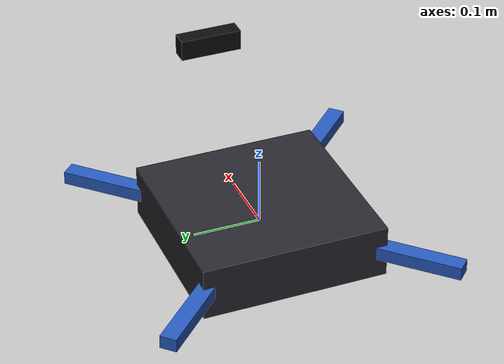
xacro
<?xml version="1.0"?>
<robot xmlns:xacro="http://www.ros.org/wiki/xacro" name="x500_depth_ros_visual">
  <!-- RViz/TF-only representation. It is intentionally NOT spawned in Gazebo. -->

  <material name="dark"><color rgba="0.15 0.15 0.18 1"/></material>
  <material name="accent"><color rgba="0.15 0.35 0.75 1"/></material>
  <material name="camera"><color rgba="0.05 0.05 0.05 1"/></material>

  <link name="base_link">
    <visual>
      <geometry><box size="0.28 0.28 0.08"/></geometry>
      <material name="dark"/>
    </visual>
  </link>

  <xacro:macro name="arm" params="name x y yaw">
    <joint name="${name}_arm_joint" type="fixed">
      <parent link="base_link"/><child link="${name}_arm"/>
      <origin xyz="${x} ${y} 0" rpy="0 0 ${yaw}"/>
    </joint>
    <link name="${name}_arm">
      <visual>
        <origin xyz="0.10 0 0"/>
        <geometry><box size="0.20 0.025 0.02"/></geometry>
        <material name="accent"/>
      </visual>
    </link>
  </xacro:macro>

  <xacro:arm name="front_left"  x="0.08"  y="0.08"  yaw="0.785398"/>
  <xacro:arm name="front_right" x="0.08"  y="-0.08" yaw="-0.785398"/>
  <xacro:arm name="rear_left"   x="-0.08" y="0.08"  yaw="2.356194"/>
  <xacro:arm name="rear_right"  x="-0.08" y="-0.08" yaw="-2.356194"/>

  <!-- Matches PX4-gazebo-models x500_depth + OakD-Lite sensor pose. -->
  <joint name="camera_mount_joint" type="fixed">
    <parent link="base_link"/><child link="camera_link"/>
    <origin xyz="0.12 0.03 0.242" rpy="0 0 0"/>
  </joint>
  <link name="camera_link">
    <visual>
      <geometry><box size="0.025 0.09 0.03"/></geometry>
      <material name="camera"/>
    </visual>
  </link>

  <joint name="camera_sensor_joint" type="fixed">
    <parent link="camera_link"/><child link="camera_sensor_link"/>
    <origin xyz="0.01233 -0.03 0.01878" rpy="0 0 0"/>
  </joint>
  <link name="camera_sensor_link"/>

  <!-- REP-103 optical frame: z forward, x right, y down. -->
  <joint name="camera_optical_joint" type="fixed">
    <parent link="camera_sensor_link"/><child link="camera_optical_frame"/>
    <origin xyz="0 0 0" rpy="-1.57079632679 0 -1.57079632679"/>
  </joint>
  <link name="camera_optical_frame"/>
</robot>
